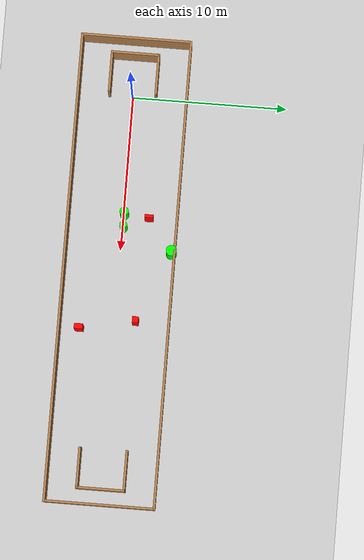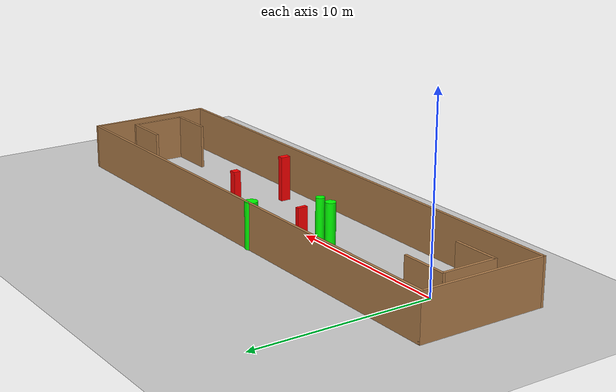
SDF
<sdf version="1.7">
 <world name="default">
  <light name="sun" type="directional">
   <pose>0 0 10 0 -0 0</pose>
   <diffuse>0.8 0.8 0.8 1</diffuse>
   <specular>0.2 0.2 0.2 1</specular>
   <attenuation>
    <range>1000</range>
    <constant>0.9</constant>
    <linear>0.01</linear>
    <quadratic>0.001</quadratic>
   </attenuation>
   <direction>-0.5 0.1 -0.9</direction>
   <spot><inner_angle>0</inner_angle><outer_angle>0</outer_angle><falloff>0</falloff></spot>
  </light>
  <model name="ground_plane">
   <static>1</static>
   <link name="link">
    <collision name="collision">
     <geometry><plane><normal>0 0 1</normal><size>100 100</size></plane></geometry>
     <surface>
      <contact><collide_bitmask>65535</collide_bitmask></contact>
      <friction><ode><mu>100</mu><mu2>50</mu2></ode></friction>
     </surface>
    </collision>
    <visual name="visual">
     <cast_shadows>0</cast_shadows>
     <geometry><plane><normal>0 0 1</normal><size>100 100</size></plane></geometry>
     <material>
      <script><uri>file://media/materials/scripts/gazebo.material</uri><name>Gazebo/Grey</name></script>
     </material>
    </visual>
   </link>
  </model>
  <gravity>0 0 -9.8</gravity>
  <magnetic_field>6e-06 2.3e-05 -4.2e-05</magnetic_field>
  <atmosphere type="adiabatic"/>
  <physics type="ode">
   <max_step_size>0.001</max_step_size>
   <real_time_factor>1</real_time_factor>
   <real_time_update_rate>1000</real_time_update_rate>
  </physics>
  <scene><ambient>0.4 0.4 0.4 1</ambient><background>0.7 0.7 0.7 1</background><shadows>1</shadows></scene>
  <spherical_coordinates>
   <surface_model>EARTH_WGS84</surface_model>
   <latitude_deg>0</latitude_deg>
   <longitude_deg>0</longitude_deg>
   <elevation>0</elevation>
   <heading_deg>0</heading_deg>
  </spherical_coordinates>
  <model name="my_base_walls">
   <link name="Wall_0">
    <collision name="Wall_0_Collision">
     <geometry><box><size>7.15 0.15 2.5</size></box></geometry>
     <pose>0 0 1.25 0 -0 0</pose>
    </collision>
    <visual name="Wall_0_Visual">
     <pose>0 0 1.25 0 -0 0</pose>
     <geometry><box><size>7.15 0.15 2.5</size></box></geometry>
     <material>
      <script><uri>file://media/materials/scripts/gazebo.material</uri><name>Gazebo/Wood</name></script>
      <ambient>1 1 1 1</ambient>
     </material>
     <meta><layer>0</layer></meta>
    </visual>
    <pose>-15 0 0 0 -0 1.5708</pose>
   </link>
   <link name="Wall_10">
    <collision name="Wall_10_Collision">
     <geometry><box><size>2.65 0.15 2.5</size></box></geometry>
     <pose>0 0 1.25 0 -0 0</pose>
    </collision>
    <visual name="Wall_10_Visual">
     <pose>0 0 1.25 0 -0 0</pose>
     <geometry><box><size>2.65 0.15 2.5</size></box></geometry>
     <material>
      <script><uri>file://media/materials/scripts/gazebo.material</uri><name>Gazebo/Wood</name></script>
      <ambient>1 1 1 1</ambient>
     </material>
     <meta><layer>0</layer></meta>
    </visual>
    <pose>-12.75 -1.5 0 0 -0 0</pose>
   </link>
   <link name="Wall_12">
    <collision name="Wall_12_Collision">
     <geometry><box><size>2.65 0.15 2.5</size></box></geometry>
     <pose>0 0 1.25 0 -0 0</pose>
    </collision>
    <visual name="Wall_12_Visual">
     <pose>0 0 1.25 0 -0 0</pose>
     <geometry><box><size>2.65 0.15 2.5</size></box></geometry>
     <material>
      <script><uri>file://media/materials/scripts/gazebo.material</uri><name>Gazebo/Wood</name></script>
      <ambient>1 1 1 1</ambient>
     </material>
     <meta><layer>0</layer></meta>
    </visual>
    <pose>-12.75 1.5 0 0 -0 0</pose>
   </link>
   <link name="Wall_14">
    <collision name="Wall_14_Collision">
     <geometry><box><size>3.15 0.15 2.5</size></box></geometry>
     <pose>0 0 1.25 0 -0 0</pose>
    </collision>
    <visual name="Wall_14_Visual">
     <pose>0 0 1.25 0 -0 0</pose>
     <geometry><box><size>3.15 0.15 2.5</size></box></geometry>
     <material>
      <script><uri>file://media/materials/scripts/gazebo.material</uri><name>Gazebo/Wood</name></script>
      <ambient>1 1 1 1</ambient>
     </material>
     <meta><layer>0</layer></meta>
    </visual>
    <pose>14 0 0 0 -0 -1.5708</pose>
   </link>
   <link name="Wall_15">
    <collision name="Wall_15_Collision">
     <geometry><box><size>2.65 0.15 2.5</size></box></geometry>
     <pose>0 0 1.25 0 -0 0</pose>
    </collision>
    <visual name="Wall_15_Visual">
     <pose>0 0 1.25 0 -0 0</pose>
     <geometry><box><size>2.65 0.15 2.5</size></box></geometry>
     <material>
      <script><uri>file://media/materials/scripts/gazebo.material</uri><name>Gazebo/Wood</name></script>
      <ambient>1 1 1 1</ambient>
     </material>
     <meta><layer>0</layer></meta>
    </visual>
    <pose>12.75 -1.5 0 0 -0 3.14159</pose>
   </link>
   <link name="Wall_17">
    <collision name="Wall_17_Collision">
     <geometry><box><size>2.65 0.15 2.5</size></box></geometry>
     <pose>0 0 1.25 0 -0 0</pose>
    </collision>
    <visual name="Wall_17_Visual">
     <pose>0 0 1.25 0 -0 0</pose>
     <geometry><box><size>2.65 0.15 2.5</size></box></geometry>
     <material>
      <script><uri>file://media/materials/scripts/gazebo.material</uri><name>Gazebo/Wood</name></script>
      <ambient>1 1 1 1</ambient>
     </material>
     <meta><layer>0</layer></meta>
    </visual>
    <pose>12.75 1.5 0 0 -0 3.14159</pose>
   </link>
   <link name="Wall_2">
    <collision name="Wall_2_Collision">
     <geometry><box><size>30.15 0.15 2.5</size></box></geometry>
     <pose>0 0 1.25 0 -0 0</pose>
    </collision>
    <visual name="Wall_2_Visual">
     <pose>0 0 1.25 0 -0 0</pose>
     <geometry><box><size>30.15 0.15 2.5</size></box></geometry>
     <material>
      <script><uri>file://media/materials/scripts/gazebo.material</uri><name>Gazebo/Wood</name></script>
      <ambient>1 1 1 1</ambient>
     </material>
     <meta><layer>0</layer></meta>
    </visual>
    <pose>-0 -3.5 0 0 -0 0</pose>
   </link>
   <link name="Wall_4">
    <collision name="Wall_4_Collision">
     <geometry><box><size>30.15 0.15 2.5</size></box></geometry>
     <pose>0 0 1.25 0 -0 0</pose>
    </collision>
    <visual name="Wall_4_Visual">
     <pose>0 0 1.25 0 -0 0</pose>
     <geometry><box><size>30.15 0.15 2.5</size></box></geometry>
     <material>
      <script><uri>file://media/materials/scripts/gazebo.material</uri><name>Gazebo/Wood</name></script>
      <ambient>1 1 1 1</ambient>
     </material>
     <meta><layer>0</layer></meta>
    </visual>
    <pose>-0 3.5 0 0 -0 0</pose>
   </link>
   <link name="Wall_6">
    <collision name="Wall_6_Collision">
     <geometry><box><size>7.15 0.15 2.5</size></box></geometry>
     <pose>0 0 1.25 0 -0 0</pose>
    </collision>
    <visual name="Wall_6_Visual">
     <pose>0 0 1.25 0 -0 0</pose>
     <geometry><box><size>7.15 0.15 2.5</size></box></geometry>
     <material>
      <script><uri>file://media/materials/scripts/gazebo.material</uri><name>Gazebo/Wood</name></script>
      <ambient>1 1 1 1</ambient>
     </material>
     <meta><layer>0</layer></meta>
    </visual>
    <pose>15 0 0 0 -0 -1.5708</pose>
   </link>
   <link name="Wall_9">
    <collision name="Wall_9_Collision">
     <geometry><box><size>3.15 0.15 2.5</size></box></geometry>
     <pose>0 0 1.25 0 -0 0</pose>
    </collision>
    <visual name="Wall_9_Visual">
     <pose>0 0 1.25 0 -0 0</pose>
     <geometry><box><size>3.15 0.15 2.5</size></box></geometry>
     <material>
      <script><uri>file://media/materials/scripts/gazebo.material</uri><name>Gazebo/Wood</name></script>
      <ambient>1 1 1 1</ambient>
     </material>
     <meta><layer>0</layer></meta>
    </visual>
    <pose>-14 0 0 0 -0 -1.5708</pose>
   </link>
   <static>1</static>
   <pose>11.5 0 0 0 -0 0</pose>
  </model>
  <model name="cylinder1">
   <static>1</static>
   <link name="link">
    <inertial>
     <mass>1</mass>
     <inertia><ixx>0.5</ixx><ixy>0</ixy><ixz>0</ixz><iyy>0.5</iyy><iyz>0</iyz><izz>1</izz></inertia>
    </inertial>
    <collision name="collision">
     <geometry><cylinder><radius>0.24045860891573403</radius><length>2.5</length></cylinder></geometry>
    </collision>
    <visual name="visual">
     <geometry><cylinder><radius>0.24045860891573403</radius><length>2.5</length></cylinder></geometry>
     <material>
      <ambient>0 1 0 1</ambient>
      <diffuse>0 1 0 1</diffuse>
      <specular>0.1 0.1 0.1 1</specular>
      <emissive>0 0 0 0</emissive>
     </material>
    </visual>
   </link>
   <pose>8.597680929440937 0.10700009388772491 1.25 0 0 0</pose>
  </model>
  <model name="cylinder2">
   <static>1</static>
   <link name="link">
    <inertial>
     <mass>1</mass>
     <inertia><ixx>0.5</ixx><ixy>0</ixy><ixz>0</ixz><iyy>0.5</iyy><iyz>0</iyz><izz>1</izz></inertia>
    </inertial>
    <collision name="collision">
     <geometry><cylinder><radius>0.28302422552169615</radius><length>2.5</length></cylinder></geometry>
    </collision>
    <visual name="visual">
     <geometry><cylinder><radius>0.28302422552169615</radius><length>2.5</length></cylinder></geometry>
     <material>
      <ambient>0 1 0 1</ambient>
      <diffuse>0 1 0 1</diffuse>
      <specular>0.1 0.1 0.1 1</specular>
      <emissive>0 0 0 0</emissive>
     </material>
    </visual>
   </link>
   <pose>7.732480282061388 0.09477215969287034 1.25 0 0 0</pose>
  </model>
  <model name="cylinder3">
   <static>1</static>
   <link name="link">
    <inertial>
     <mass>1</mass>
     <inertia><ixx>0.5</ixx><ixy>0</ixy><ixz>0</ixz><iyy>0.5</iyy><iyz>0</iyz><izz>1</izz></inertia>
    </inertial>
    <collision name="collision">
     <geometry><cylinder><radius>0.3471981400271382</radius><length>2.5</length></cylinder></geometry>
    </collision>
    <visual name="visual">
     <geometry><cylinder><radius>0.3471981400271382</radius><length>2.5</length></cylinder></geometry>
     <material>
      <ambient>0 1 0 1</ambient>
      <diffuse>0 1 0 1</diffuse>
      <specular>0.1 0.1 0.1 1</specular>
      <emissive>0 0 0 0</emissive>
     </material>
    </visual>
   </link>
   <pose>10.012785929820563 3.3035813783775776 1.25 0 0 0</pose>
  </model>
  <model name="box1">
   <static>1</static>
   <link name="link">
    <inertial>
     <mass>1</mass>
     <inertia><ixx>0.083</ixx><ixy>0</ixy><ixz>0</ixz><iyy>0.083</iyy><iyz>0</iyz><izz>0.083</izz></inertia>
    </inertial>
    <collision name="collision">
     <geometry><box><size>0.3367976786986799 0.5555225196961435 2.5</size></box></geometry>
    </collision>
    <visual name="visual">
     <geometry><box><size>0.3367976786986799 0.5555225196961435 2.5</size></box></geometry>
     <material>
      <ambient>1 0 0 1</ambient>
      <diffuse>1 0 0 1</diffuse>
      <specular>0.1 0.1 0.1 1</specular>
      <emissive>0 0 0 0</emissive>
     </material>
    </visual>
    <sensor name="my_contact" type="contact">
     <contact><collision>box_collision</collision><topic>__default_topic__</topic></contact>
    </sensor>
   </link>
   <pose>15.291991275702259 -2.220648485651414 1.25 0 0 0</pose>
  </model>
  <model name="box2">
   <static>1</static>
   <link name="link">
    <inertial>
     <mass>1</mass>
     <inertia><ixx>0.083</ixx><ixy>0</ixy><ixz>0</ixz><iyy>0.083</iyy><iyz>0</iyz><izz>0.083</izz></inertia>
    </inertial>
    <collision name="collision">
     <geometry><box><size>0.20183047847553703 0.5579080061875095 2.5</size></box></geometry>
    </collision>
    <visual name="visual">
     <geometry><box><size>0.20183047847553703 0.5579080061875095 2.5</size></box></geometry>
     <material>
      <ambient>1 0 0 1</ambient>
      <diffuse>1 0 0 1</diffuse>
      <specular>0.1 0.1 0.1 1</specular>
      <emissive>0 0 0 0</emissive>
     </material>
    </visual>
    <sensor name="my_contact" type="contact">
     <contact><collision>box_collision</collision><topic>__default_topic__</topic></contact>
    </sensor>
   </link>
   <pose>7.919393174648505 1.7035029912064825 1.25 0 0 0</pose>
  </model>
  <model name="box3">
   <static>1</static>
   <link name="link">
    <inertial>
     <mass>1</mass>
     <inertia><ixx>0.083</ixx><ixy>0</ixy><ixz>0</ixz><iyy>0.083</iyy><iyz>0</iyz><izz>0.083</izz></inertia>
    </inertial>
    <collision name="collision">
     <geometry><box><size>0.40228508065099955 0.39940193979435346 2.5</size></box></geometry>
    </collision>
    <visual name="visual">
     <geometry><box><size>0.40228508065099955 0.39940193979435346 2.5</size></box></geometry>
     <material>
      <ambient>1 0 0 1</ambient>
      <diffuse>1 0 0 1</diffuse>
      <specular>0.1 0.1 0.1 1</specular>
      <emissive>0 0 0 0</emissive>
     </material>
    </visual>
    <sensor name="my_contact" type="contact">
     <contact><collision>box_collision</collision><topic>__default_topic__</topic></contact>
    </sensor>
   </link>
   <pose>14.600330099349158 1.3595456369771624 1.25 0 0 0</pose>
  </model>
 </world>
</sdf>
